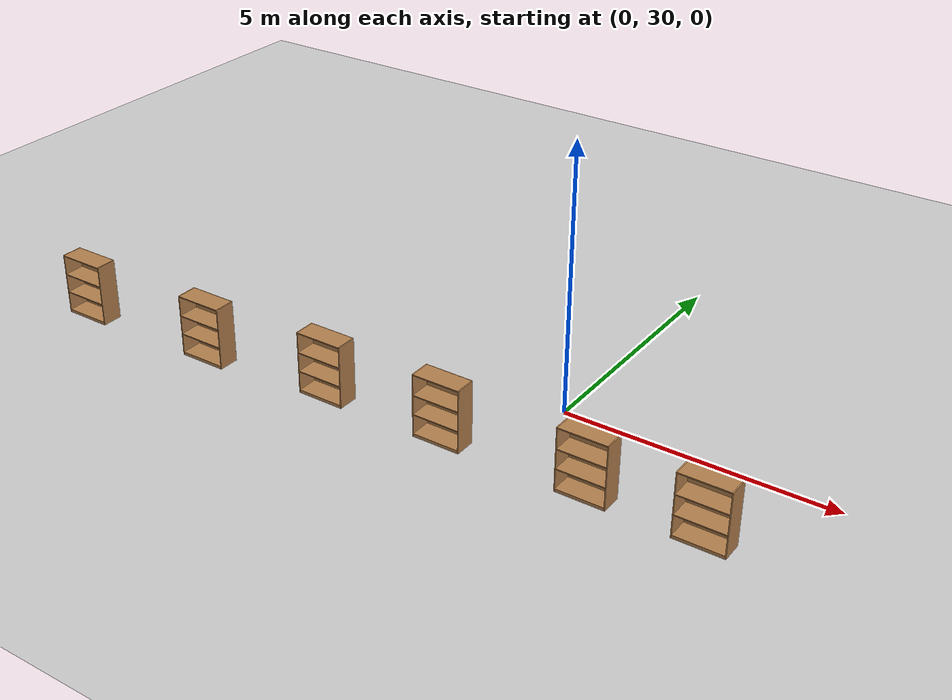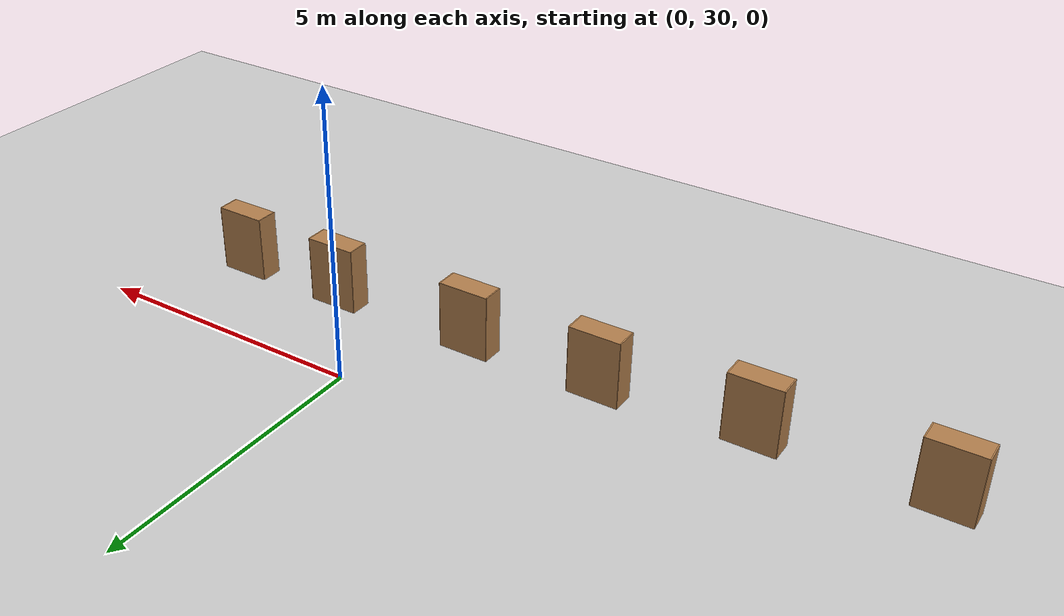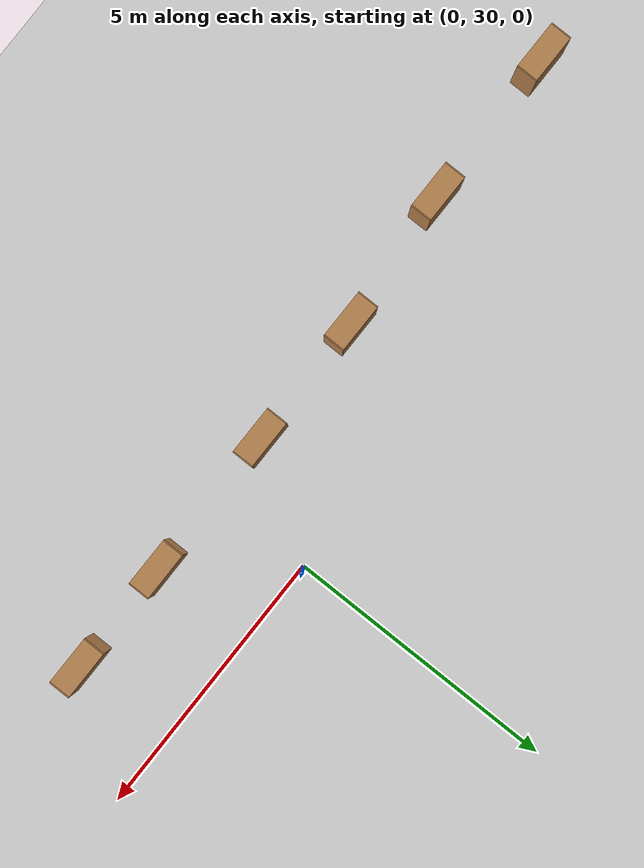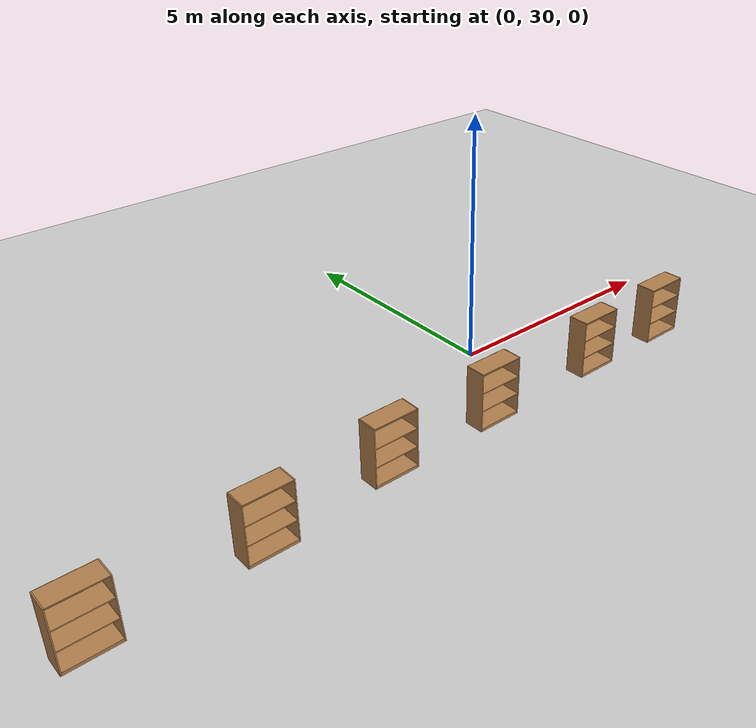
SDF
<sdf version="1.7">
 <world name="default">
  <model name="ground_plane">
   <static>1</static>
   <link name="link">
    <collision name="collision">
     <geometry><plane><normal>0 0 1</normal><size>100 100</size></plane></geometry>
     <surface>
      <contact><collide_bitmask>65535</collide_bitmask></contact>
      <friction><ode><mu>100</mu><mu2>50</mu2></ode></friction>
     </surface>
    </collision>
    <visual name="visual">
     <cast_shadows>0</cast_shadows>
     <geometry><plane><normal>0 0 1</normal><size>100 100</size></plane></geometry>
     <material>
      <script><uri>file://media/materials/scripts/gazebo.material</uri><name>Gazebo/Grey</name></script>
     </material>
    </visual>
   </link>
  </model>
  <model name="bookshelf">
   <static>1</static>
   <link name="link">
    <inertial><mass>1</mass></inertial>
    <collision name="back">
     <pose>0 0.005 0.6 0 -0 0</pose>
     <geometry><box><size>0.9 0.01 1.2</size></box></geometry>
    </collision>
    <visual name="visual1">
     <pose>0 0.005 0.6 0 -0 0</pose>
     <geometry><box><size>0.9 0.01 1.2</size></box></geometry>
     <material>
      <script><uri>file://media/materials/scripts/gazebo.material</uri><name>Gazebo/Wood</name></script>
     </material>
    </visual>
    <collision name="left_side">
     <pose>0.45 -0.195 0.6 0 -0 0</pose>
     <geometry><box><size>0.02 0.4 1.2</size></box></geometry>
    </collision>
    <visual name="visual2">
     <pose>0.45 -0.195 0.6 0 -0 0</pose>
     <geometry><box><size>0.02 0.4 1.2</size></box></geometry>
     <material>
      <script><uri>file://media/materials/scripts/gazebo.material</uri><name>Gazebo/Wood</name></script>
     </material>
    </visual>
    <collision name="right_side">
     <pose>-0.45 -0.195 0.6 0 -0 0</pose>
     <geometry><box><size>0.02 0.4 1.2</size></box></geometry>
    </collision>
    <visual name="visual3">
     <pose>-0.45 -0.195 0.6 0 -0 0</pose>
     <geometry><box><size>0.02 0.4 1.2</size></box></geometry>
     <material>
      <script><uri>file://media/materials/scripts/gazebo.material</uri><name>Gazebo/Wood</name></script>
     </material>
    </visual>
    <collision name="bottom">
     <pose>0 -0.195 0.03 0 -0 0</pose>
     <geometry><box><size>0.88 0.4 0.06</size></box></geometry>
    </collision>
    <visual name="visual4">
     <pose>0 -0.195 0.03 0 -0 0</pose>
     <geometry><box><size>0.88 0.4 0.06</size></box></geometry>
     <material>
      <script><uri>file://media/materials/scripts/gazebo.material</uri><name>Gazebo/Wood</name></script>
     </material>
    </visual>
    <collision name="top">
     <pose>0 -0.195 1.19 0 -0 0</pose>
     <geometry><box><size>0.88 0.4 0.02</size></box></geometry>
    </collision>
    <visual name="visual5">
     <pose>0 -0.195 1.19 0 -0 0</pose>
     <geometry><box><size>0.88 0.4 0.02</size></box></geometry>
     <material>
      <script><uri>file://media/materials/scripts/gazebo.material</uri><name>Gazebo/Wood</name></script>
     </material>
    </visual>
    <collision name="low_shelf">
     <pose>0 -0.195 0.43 0 -0 0</pose>
     <geometry><box><size>0.88 0.4 0.02</size></box></geometry>
    </collision>
    <visual name="visual6">
     <pose>0 -0.195 0.43 0 -0 0</pose>
     <geometry><box><size>0.88 0.4 0.02</size></box></geometry>
     <material>
      <script><uri>file://media/materials/scripts/gazebo.material</uri><name>Gazebo/Wood</name></script>
     </material>
    </visual>
    <collision name="high_shelf">
     <pose>0 -0.195 0.8 0 -0 0</pose>
     <geometry><box><size>0.88 0.4 0.02</size></box></geometry>
    </collision>
    <visual name="visual7">
     <pose>0 -0.195 0.8 0 -0 0</pose>
     <geometry><box><size>0.88 0.4 0.02</size></box></geometry>
     <material>
      <script><uri>file://media/materials/scripts/gazebo.material</uri><name>Gazebo/Wood</name></script>
     </material>
    </visual>
   </link>
   <pose>-9.06257 28.0132 0 0 -0 0</pose>
  </model>
  <model name="bookshelf_clone">
   <static>1</static>
   <link name="link">
    <inertial><mass>1</mass></inertial>
    <collision name="back">
     <pose>0 0.005 0.6 0 -0 0</pose>
     <geometry><box><size>0.9 0.01 1.2</size></box></geometry>
    </collision>
    <visual name="visual1">
     <pose>0 0.005 0.6 0 -0 0</pose>
     <geometry><box><size>0.9 0.01 1.2</size></box></geometry>
     <material>
      <script><uri>file://media/materials/scripts/gazebo.material</uri><name>Gazebo/Wood</name></script>
     </material>
    </visual>
    <collision name="left_side">
     <pose>0.45 -0.195 0.6 0 -0 0</pose>
     <geometry><box><size>0.02 0.4 1.2</size></box></geometry>
    </collision>
    <visual name="visual2">
     <pose>0.45 -0.195 0.6 0 -0 0</pose>
     <geometry><box><size>0.02 0.4 1.2</size></box></geometry>
     <material>
      <script><uri>file://media/materials/scripts/gazebo.material</uri><name>Gazebo/Wood</name></script>
     </material>
    </visual>
    <collision name="right_side">
     <pose>-0.45 -0.195 0.6 0 -0 0</pose>
     <geometry><box><size>0.02 0.4 1.2</size></box></geometry>
    </collision>
    <visual name="visual3">
     <pose>-0.45 -0.195 0.6 0 -0 0</pose>
     <geometry><box><size>0.02 0.4 1.2</size></box></geometry>
     <material>
      <script><uri>file://media/materials/scripts/gazebo.material</uri><name>Gazebo/Wood</name></script>
     </material>
    </visual>
    <collision name="bottom">
     <pose>0 -0.195 0.03 0 -0 0</pose>
     <geometry><box><size>0.88 0.4 0.06</size></box></geometry>
    </collision>
    <visual name="visual4">
     <pose>0 -0.195 0.03 0 -0 0</pose>
     <geometry><box><size>0.88 0.4 0.06</size></box></geometry>
     <material>
      <script><uri>file://media/materials/scripts/gazebo.material</uri><name>Gazebo/Wood</name></script>
     </material>
    </visual>
    <collision name="top">
     <pose>0 -0.195 1.19 0 -0 0</pose>
     <geometry><box><size>0.88 0.4 0.02</size></box></geometry>
    </collision>
    <visual name="visual5">
     <pose>0 -0.195 1.19 0 -0 0</pose>
     <geometry><box><size>0.88 0.4 0.02</size></box></geometry>
     <material>
      <script><uri>file://media/materials/scripts/gazebo.material</uri><name>Gazebo/Wood</name></script>
     </material>
    </visual>
    <collision name="low_shelf">
     <pose>0 -0.195 0.43 0 -0 0</pose>
     <geometry><box><size>0.88 0.4 0.02</size></box></geometry>
    </collision>
    <visual name="visual6">
     <pose>0 -0.195 0.43 0 -0 0</pose>
     <geometry><box><size>0.88 0.4 0.02</size></box></geometry>
     <material>
      <script><uri>file://media/materials/scripts/gazebo.material</uri><name>Gazebo/Wood</name></script>
     </material>
    </visual>
    <collision name="high_shelf">
     <pose>0 -0.195 0.8 0 -0 0</pose>
     <geometry><box><size>0.88 0.4 0.02</size></box></geometry>
    </collision>
    <visual name="visual7">
     <pose>0 -0.195 0.8 0 -0 0</pose>
     <geometry><box><size>0.88 0.4 0.02</size></box></geometry>
     <material>
      <script><uri>file://media/materials/scripts/gazebo.material</uri><name>Gazebo/Wood</name></script>
     </material>
    </visual>
   </link>
   <pose>-6.1863 28.0806 0 0 -0 0</pose>
  </model>
  <model name="bookshelf_clone_0">
   <static>1</static>
   <link name="link">
    <inertial><mass>1</mass></inertial>
    <collision name="back">
     <pose>0 0.005 0.6 0 -0 0</pose>
     <geometry><box><size>0.9 0.01 1.2</size></box></geometry>
    </collision>
    <visual name="visual1">
     <pose>0 0.005 0.6 0 -0 0</pose>
     <geometry><box><size>0.9 0.01 1.2</size></box></geometry>
     <material>
      <script><uri>file://media/materials/scripts/gazebo.material</uri><name>Gazebo/Wood</name></script>
     </material>
    </visual>
    <collision name="left_side">
     <pose>0.45 -0.195 0.6 0 -0 0</pose>
     <geometry><box><size>0.02 0.4 1.2</size></box></geometry>
    </collision>
    <visual name="visual2">
     <pose>0.45 -0.195 0.6 0 -0 0</pose>
     <geometry><box><size>0.02 0.4 1.2</size></box></geometry>
     <material>
      <script><uri>file://media/materials/scripts/gazebo.material</uri><name>Gazebo/Wood</name></script>
     </material>
    </visual>
    <collision name="right_side">
     <pose>-0.45 -0.195 0.6 0 -0 0</pose>
     <geometry><box><size>0.02 0.4 1.2</size></box></geometry>
    </collision>
    <visual name="visual3">
     <pose>-0.45 -0.195 0.6 0 -0 0</pose>
     <geometry><box><size>0.02 0.4 1.2</size></box></geometry>
     <material>
      <script><uri>file://media/materials/scripts/gazebo.material</uri><name>Gazebo/Wood</name></script>
     </material>
    </visual>
    <collision name="bottom">
     <pose>0 -0.195 0.03 0 -0 0</pose>
     <geometry><box><size>0.88 0.4 0.06</size></box></geometry>
    </collision>
    <visual name="visual4">
     <pose>0 -0.195 0.03 0 -0 0</pose>
     <geometry><box><size>0.88 0.4 0.06</size></box></geometry>
     <material>
      <script><uri>file://media/materials/scripts/gazebo.material</uri><name>Gazebo/Wood</name></script>
     </material>
    </visual>
    <collision name="top">
     <pose>0 -0.195 1.19 0 -0 0</pose>
     <geometry><box><size>0.88 0.4 0.02</size></box></geometry>
    </collision>
    <visual name="visual5">
     <pose>0 -0.195 1.19 0 -0 0</pose>
     <geometry><box><size>0.88 0.4 0.02</size></box></geometry>
     <material>
      <script><uri>file://media/materials/scripts/gazebo.material</uri><name>Gazebo/Wood</name></script>
     </material>
    </visual>
    <collision name="low_shelf">
     <pose>0 -0.195 0.43 0 -0 0</pose>
     <geometry><box><size>0.88 0.4 0.02</size></box></geometry>
    </collision>
    <visual name="visual6">
     <pose>0 -0.195 0.43 0 -0 0</pose>
     <geometry><box><size>0.88 0.4 0.02</size></box></geometry>
     <material>
      <script><uri>file://media/materials/scripts/gazebo.material</uri><name>Gazebo/Wood</name></script>
     </material>
    </visual>
    <collision name="high_shelf">
     <pose>0 -0.195 0.8 0 -0 0</pose>
     <geometry><box><size>0.88 0.4 0.02</size></box></geometry>
    </collision>
    <visual name="visual7">
     <pose>0 -0.195 0.8 0 -0 0</pose>
     <geometry><box><size>0.88 0.4 0.02</size></box></geometry>
     <material>
      <script><uri>file://media/materials/scripts/gazebo.material</uri><name>Gazebo/Wood</name></script>
     </material>
    </visual>
   </link>
   <pose>-3.63613 28.2905 0 0 -0 0</pose>
  </model>
  <model name="bookshelf_clone_1">
   <static>1</static>
   <link name="link">
    <inertial><mass>1</mass></inertial>
    <collision name="back">
     <pose>0 0.005 0.6 0 -0 0</pose>
     <geometry><box><size>0.9 0.01 1.2</size></box></geometry>
    </collision>
    <visual name="visual1">
     <pose>0 0.005 0.6 0 -0 0</pose>
     <geometry><box><size>0.9 0.01 1.2</size></box></geometry>
     <material>
      <script><uri>file://media/materials/scripts/gazebo.material</uri><name>Gazebo/Wood</name></script>
     </material>
    </visual>
    <collision name="left_side">
     <pose>0.45 -0.195 0.6 0 -0 0</pose>
     <geometry><box><size>0.02 0.4 1.2</size></box></geometry>
    </collision>
    <visual name="visual2">
     <pose>0.45 -0.195 0.6 0 -0 0</pose>
     <geometry><box><size>0.02 0.4 1.2</size></box></geometry>
     <material>
      <script><uri>file://media/materials/scripts/gazebo.material</uri><name>Gazebo/Wood</name></script>
     </material>
    </visual>
    <collision name="right_side">
     <pose>-0.45 -0.195 0.6 0 -0 0</pose>
     <geometry><box><size>0.02 0.4 1.2</size></box></geometry>
    </collision>
    <visual name="visual3">
     <pose>-0.45 -0.195 0.6 0 -0 0</pose>
     <geometry><box><size>0.02 0.4 1.2</size></box></geometry>
     <material>
      <script><uri>file://media/materials/scripts/gazebo.material</uri><name>Gazebo/Wood</name></script>
     </material>
    </visual>
    <collision name="bottom">
     <pose>0 -0.195 0.03 0 -0 0</pose>
     <geometry><box><size>0.88 0.4 0.06</size></box></geometry>
    </collision>
    <visual name="visual4">
     <pose>0 -0.195 0.03 0 -0 0</pose>
     <geometry><box><size>0.88 0.4 0.06</size></box></geometry>
     <material>
      <script><uri>file://media/materials/scripts/gazebo.material</uri><name>Gazebo/Wood</name></script>
     </material>
    </visual>
    <collision name="top">
     <pose>0 -0.195 1.19 0 -0 0</pose>
     <geometry><box><size>0.88 0.4 0.02</size></box></geometry>
    </collision>
    <visual name="visual5">
     <pose>0 -0.195 1.19 0 -0 0</pose>
     <geometry><box><size>0.88 0.4 0.02</size></box></geometry>
     <material>
      <script><uri>file://media/materials/scripts/gazebo.material</uri><name>Gazebo/Wood</name></script>
     </material>
    </visual>
    <collision name="low_shelf">
     <pose>0 -0.195 0.43 0 -0 0</pose>
     <geometry><box><size>0.88 0.4 0.02</size></box></geometry>
    </collision>
    <visual name="visual6">
     <pose>0 -0.195 0.43 0 -0 0</pose>
     <geometry><box><size>0.88 0.4 0.02</size></box></geometry>
     <material>
      <script><uri>file://media/materials/scripts/gazebo.material</uri><name>Gazebo/Wood</name></script>
     </material>
    </visual>
    <collision name="high_shelf">
     <pose>0 -0.195 0.8 0 -0 0</pose>
     <geometry><box><size>0.88 0.4 0.02</size></box></geometry>
    </collision>
    <visual name="visual7">
     <pose>0 -0.195 0.8 0 -0 0</pose>
     <geometry><box><size>0.88 0.4 0.02</size></box></geometry>
     <material>
      <script><uri>file://media/materials/scripts/gazebo.material</uri><name>Gazebo/Wood</name></script>
     </material>
    </visual>
   </link>
   <pose>-1.2271 28.3146 0 0 -0 0</pose>
  </model>
  <model name="bookshelf_clone_2">
   <static>1</static>
   <link name="link">
    <inertial><mass>1</mass></inertial>
    <collision name="back">
     <pose>0 0.005 0.6 0 -0 0</pose>
     <geometry><box><size>0.9 0.01 1.2</size></box></geometry>
    </collision>
    <visual name="visual1">
     <pose>0 0.005 0.6 0 -0 0</pose>
     <geometry><box><size>0.9 0.01 1.2</size></box></geometry>
     <material>
      <script><uri>file://media/materials/scripts/gazebo.material</uri><name>Gazebo/Wood</name></script>
     </material>
    </visual>
    <collision name="left_side">
     <pose>0.45 -0.195 0.6 0 -0 0</pose>
     <geometry><box><size>0.02 0.4 1.2</size></box></geometry>
    </collision>
    <visual name="visual2">
     <pose>0.45 -0.195 0.6 0 -0 0</pose>
     <geometry><box><size>0.02 0.4 1.2</size></box></geometry>
     <material>
      <script><uri>file://media/materials/scripts/gazebo.material</uri><name>Gazebo/Wood</name></script>
     </material>
    </visual>
    <collision name="right_side">
     <pose>-0.45 -0.195 0.6 0 -0 0</pose>
     <geometry><box><size>0.02 0.4 1.2</size></box></geometry>
    </collision>
    <visual name="visual3">
     <pose>-0.45 -0.195 0.6 0 -0 0</pose>
     <geometry><box><size>0.02 0.4 1.2</size></box></geometry>
     <material>
      <script><uri>file://media/materials/scripts/gazebo.material</uri><name>Gazebo/Wood</name></script>
     </material>
    </visual>
    <collision name="bottom">
     <pose>0 -0.195 0.03 0 -0 0</pose>
     <geometry><box><size>0.88 0.4 0.06</size></box></geometry>
    </collision>
    <visual name="visual4">
     <pose>0 -0.195 0.03 0 -0 0</pose>
     <geometry><box><size>0.88 0.4 0.06</size></box></geometry>
     <material>
      <script><uri>file://media/materials/scripts/gazebo.material</uri><name>Gazebo/Wood</name></script>
     </material>
    </visual>
    <collision name="top">
     <pose>0 -0.195 1.19 0 -0 0</pose>
     <geometry><box><size>0.88 0.4 0.02</size></box></geometry>
    </collision>
    <visual name="visual5">
     <pose>0 -0.195 1.19 0 -0 0</pose>
     <geometry><box><size>0.88 0.4 0.02</size></box></geometry>
     <material>
      <script><uri>file://media/materials/scripts/gazebo.material</uri><name>Gazebo/Wood</name></script>
     </material>
    </visual>
    <collision name="low_shelf">
     <pose>0 -0.195 0.43 0 -0 0</pose>
     <geometry><box><size>0.88 0.4 0.02</size></box></geometry>
    </collision>
    <visual name="visual6">
     <pose>0 -0.195 0.43 0 -0 0</pose>
     <geometry><box><size>0.88 0.4 0.02</size></box></geometry>
     <material>
      <script><uri>file://media/materials/scripts/gazebo.material</uri><name>Gazebo/Wood</name></script>
     </material>
    </visual>
    <collision name="high_shelf">
     <pose>0 -0.195 0.8 0 -0 0</pose>
     <geometry><box><size>0.88 0.4 0.02</size></box></geometry>
    </collision>
    <visual name="visual7">
     <pose>0 -0.195 0.8 0 -0 0</pose>
     <geometry><box><size>0.88 0.4 0.02</size></box></geometry>
     <material>
      <script><uri>file://media/materials/scripts/gazebo.material</uri><name>Gazebo/Wood</name></script>
     </material>
    </visual>
   </link>
   <pose>1.49488 28.3327 0 0 -0 0</pose>
  </model>
  <model name="bookshelf_clone_3">
   <static>1</static>
   <link name="link">
    <inertial><mass>1</mass></inertial>
    <collision name="back">
     <pose>0 0.005 0.6 0 -0 0</pose>
     <geometry><box><size>0.9 0.01 1.2</size></box></geometry>
    </collision>
    <visual name="visual1">
     <pose>0 0.005 0.6 0 -0 0</pose>
     <geometry><box><size>0.9 0.01 1.2</size></box></geometry>
     <material>
      <script><uri>file://media/materials/scripts/gazebo.material</uri><name>Gazebo/Wood</name></script>
     </material>
    </visual>
    <collision name="left_side">
     <pose>0.45 -0.195 0.6 0 -0 0</pose>
     <geometry><box><size>0.02 0.4 1.2</size></box></geometry>
    </collision>
    <visual name="visual2">
     <pose>0.45 -0.195 0.6 0 -0 0</pose>
     <geometry><box><size>0.02 0.4 1.2</size></box></geometry>
     <material>
      <script><uri>file://media/materials/scripts/gazebo.material</uri><name>Gazebo/Wood</name></script>
     </material>
    </visual>
    <collision name="right_side">
     <pose>-0.45 -0.195 0.6 0 -0 0</pose>
     <geometry><box><size>0.02 0.4 1.2</size></box></geometry>
    </collision>
    <visual name="visual3">
     <pose>-0.45 -0.195 0.6 0 -0 0</pose>
     <geometry><box><size>0.02 0.4 1.2</size></box></geometry>
     <material>
      <script><uri>file://media/materials/scripts/gazebo.material</uri><name>Gazebo/Wood</name></script>
     </material>
    </visual>
    <collision name="bottom">
     <pose>0 -0.195 0.03 0 -0 0</pose>
     <geometry><box><size>0.88 0.4 0.06</size></box></geometry>
    </collision>
    <visual name="visual4">
     <pose>0 -0.195 0.03 0 -0 0</pose>
     <geometry><box><size>0.88 0.4 0.06</size></box></geometry>
     <material>
      <script><uri>file://media/materials/scripts/gazebo.material</uri><name>Gazebo/Wood</name></script>
     </material>
    </visual>
    <collision name="top">
     <pose>0 -0.195 1.19 0 -0 0</pose>
     <geometry><box><size>0.88 0.4 0.02</size></box></geometry>
    </collision>
    <visual name="visual5">
     <pose>0 -0.195 1.19 0 -0 0</pose>
     <geometry><box><size>0.88 0.4 0.02</size></box></geometry>
     <material>
      <script><uri>file://media/materials/scripts/gazebo.material</uri><name>Gazebo/Wood</name></script>
     </material>
    </visual>
    <collision name="low_shelf">
     <pose>0 -0.195 0.43 0 -0 0</pose>
     <geometry><box><size>0.88 0.4 0.02</size></box></geometry>
    </collision>
    <visual name="visual6">
     <pose>0 -0.195 0.43 0 -0 0</pose>
     <geometry><box><size>0.88 0.4 0.02</size></box></geometry>
     <material>
      <script><uri>file://media/materials/scripts/gazebo.material</uri><name>Gazebo/Wood</name></script>
     </material>
    </visual>
    <collision name="high_shelf">
     <pose>0 -0.195 0.8 0 -0 0</pose>
     <geometry><box><size>0.88 0.4 0.02</size></box></geometry>
    </collision>
    <visual name="visual7">
     <pose>0 -0.195 0.8 0 -0 0</pose>
     <geometry><box><size>0.88 0.4 0.02</size></box></geometry>
     <material>
      <script><uri>file://media/materials/scripts/gazebo.material</uri><name>Gazebo/Wood</name></script>
     </material>
    </visual>
   </link>
   <pose>3.54008 28.3274 0 0 -0 0</pose>
  </model>
 </world>
</sdf>
